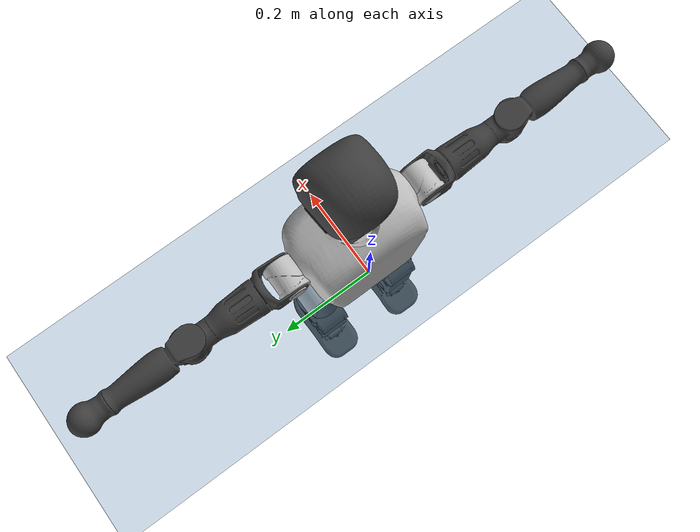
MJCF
<mujoco model="T1">
  <compiler angle="radian" assetdir="assets" balanceinertia="true" inertiafromgeom="false"/>

  <option timestep="0.005" density="1.2" viscosity="2e-05"/>

  <size nkey="1"/>

  <visual>
    <quality shadowsize="8192"/>
    <map shadowclip="0.5"/>
  </visual>

  <default>
    <default class="/">
      <joint armature="0.01" damping="0.01" frictionloss="0.1"/>
      <geom contype="0" conaffinity="0" group="1" solref="-1000 -80"/>
      <site size="0.01 0.005 0.005" group="5"/>
      <general forcelimited="true" biastype="affine" gainprm="25" biasprm="0 -25 -0.6"/>
      <default class="t1">
        <geom rgba="0.25 0.25 0.25 1"/>
        <default class="visual">
          <geom type="mesh" group="2"/>
        </default>
        <default class="collision">
          <geom group="3"/>
        </default>
        <default class="foot">
          <geom size="0.1115 0.05 0.015" type="box" condim="6" group="4" priority="1" solimp="0.015 1 0.015"/>
        </default>
        <default class="reward_collision_sphere">
          <geom group="5" rgba="1 0 0 1"/>
        </default>
      </default>
    </default>
  </default>

  <asset>
    <texture type="skybox" colorspace="auto" name="//unnamed_texture_0" builtin="gradient" rgb1="0.95 0.95 0.95" rgb2="0.95 0.95 0.95" width="100" height="600"/>
    <texture type="2d" colorspace="auto" name="texplane" builtin="checker" rgb1="0.345 0.575 0.748" rgb2="0.345 0.575 0.748" markrgb="1 1 1" width="512" height="512"/>
    <material name="MatPlane" class="/" texture="texplane" texuniform="true" texrepeat="2 2" specular="0.9"/>
    <mesh name="Trunk" class="/" file="Trunk.stl"/>
    <mesh name="H1" class="/" file="H1.stl"/>
    <mesh name="H2" class="/" file="H2.stl"/>
    <mesh name="AL1" class="/" file="AL1.stl"/>
    <mesh name="AL2" class="/" file="AL2.stl"/>
    <mesh name="AL3" class="/" file="AL3.stl"/>
    <mesh name="left_hand_link" class="/" file="left_hand_link.stl"/>
    <mesh name="AR1" class="/" file="AR1.stl"/>
    <mesh name="AR2" class="/" file="AR2.stl"/>
    <mesh name="AR3" class="/" file="AR3.stl"/>
    <mesh name="right_hand_link" class="/" file="right_hand_link.stl"/>
    <mesh name="Waist" class="/" file="Waist.stl"/>
    <mesh name="Hip_Pitch_Left" class="/" file="Hip_Pitch_Left.stl"/>
    <mesh name="Hip_Roll_Left" class="/" file="Hip_Roll_Left.stl"/>
    <mesh name="Hip_Yaw_Left" class="/" file="Hip_Yaw_Left.stl"/>
    <mesh name="Shank_Left" class="/" file="Shank_Left.stl"/>
    <mesh name="Ankle_Cross_Left" class="/" file="Ankle_Cross_Left.stl"/>
    <mesh name="left_foot_link" class="/" file="left_foot_link.stl"/>
    <mesh name="Hip_Pitch_Right" class="/" file="Hip_Pitch_Right.stl"/>
    <mesh name="Hip_Roll_Right" class="/" file="Hip_Roll_Right.stl"/>
    <mesh name="Hip_Yaw_Right" class="/" file="Hip_Yaw_Right.stl"/>
    <mesh name="Shank_Right" class="/" file="Shank_Right.stl"/>
    <mesh name="Ankle_Cross_Right" class="/" file="Ankle_Cross_Right.stl"/>
    <mesh name="right_foot_link" class="/" file="right_foot_link.stl"/>
  </asset>

  <worldbody>
    <geom name="floor" class="/" size="100 100 0.125" type="plane" group="0" material="MatPlane"/>
    <light name="toplight_shadow" class="/" pos="0 0 5" dir="0.0990148 0.0990148 -0.990148" type="directional" ambient="0.04 0.04 0.04" diffuse="0.55 0.55 0.55" specular="0.12 0.12 0.12"/>
    <light name="toplight_fill" class="/" pos="0 0 5" dir="0.0990148 0.0990148 -0.990148" type="directional" castshadow="false" ambient="0.04 0.04 0.04" diffuse="0.3 0.3 0.3" specular="0.08 0.08 0.08"/>
    <body name="trunk" childclass="t1" pos="-4.2152e-05 -0.000526283 -0.000387922" quat="1 0.000329016 -0.000124969 0.000248993">
      <inertial pos="0.0466432 -0.00106641 0.103565" quat="0.999958 0.000215313 -0.00910512 -0.000969914" mass="9.50404" diaginertia="0.038806 0.059099 0.0537698"/>
      <joint name="//unnamed_joint_0" type="free" armature="0" damping="0" frictionloss="0"/>
      <geom name="//unnamed_geom_1" class="visual" rgba="0.76 0.76 0.76 1" mesh="Trunk"/>
      <geom name="//unnamed_geom_2" class="collision" size="0.0695624 0.0927498 0.139125" pos="0.0505039 0 0.119139" type="box"/>
      <geom name="//unnamed_geom_3" class="reward_collision_sphere" size="0.106662" pos="0.0505039 0 0.0992822"/>
      <geom name="//unnamed_geom_4" class="reward_collision_sphere" size="0.0139125" pos="0.0505039 0.0805749 0"/>
      <geom name="//unnamed_geom_5" class="reward_collision_sphere" size="0.0139125" pos="0.0505039 -0.0805749 0"/>
      <geom name="//unnamed_geom_6" class="reward_collision_sphere" size="0.0139125" pos="0.0505039 0.10143 0.178708"/>
      <geom name="//unnamed_geom_7" class="reward_collision_sphere" size="0.0139125" pos="0.0505039 -0.10143 0.178708"/>
      <site name="imu" pos="-0.00715048 0.00787255 -0.00671016" size="0.00927498"/>
      <camera name="track" pos="0 -1.89588 0" quat="0.707107 0.707107 0 0" mode="trackcom"/>
      <camera name="ego_camera" pos="0.102691 0 0.416985" quat="-0.5 -0.5 0.5 0.5"/>
      <body name="H1" pos="0.0519611 -0.000264325 0.241741" quat="1 -6.08638e-05 2.39831e-05 -0.000672838">
        <inertial pos="-0.00103214 -0.00127461 0.0562774" quat="0.763245 -0.0137173 -0.00041788 0.645963" mass="0.36568" diaginertia="0.000102864 0.000171588 0.000145757"/>
        <joint name="AAHead_yaw" pos="0 0 0" axis="0.00175213 0.00320148 0.999993" stiffness="0.00204085" range="-1.56277 1.57772" armature="0.00999084" damping="0.00282919" frictionloss="0.0925031"/>
        <geom name="//unnamed_geom_8" class="visual" mesh="H1"/>
        <body name="H2" pos="0.00130447 0.000399133 0.0613814" quat="1 -0.000109227 5.2618e-05 -0.000484369">
          <inertial pos="0.00625423 0.00129645 0.097915" quat="0.988494 0.104923 -0.0743887 -0.07961" mass="0.506302" diaginertia="0.000859002 0.0014801 0.00164992"/>
          <joint name="Head_pitch" pos="0 0 0" axis="-0.000233604 -1 -0.000316516" range="-1.22849 0.363922" armature="0.00871284" damping="0.00858401" frictionloss="0.0902663"/>
          <geom name="//unnamed_geom_9" class="visual" mesh="H2"/>
          <geom name="//unnamed_geom_10" class="collision" size="0.0741998" pos="0.00841732 0 0.10921"/>
          <geom name="//unnamed_geom_11" class="reward_collision_sphere" size="0.0834748" pos="0.0168346 0 0.0992822"/>
        </body>
      </body>
      <body name="AL1" pos="0.0485409 0.100693 0.216767" quat="1 0.000128307 0.000431834 -1.27384e-05">
        <inertial pos="-0.00100447 0.0428209 5.7748e-05" quat="0.502346 0.496794 -0.504876 0.495927" mass="0.423915" diaginertia="0.000573151 0.00100113 0.000285718"/>
        <joint name="Left_Shoulder_Pitch" pos="0 0 0" axis="0.00134744 0.999991 0.00410503" range="-3.32865 1.21187" armature="0.00956121" damping="0.00730597" frictionloss="0.0953975"/>
        <geom name="//unnamed_geom_12" class="visual" rgba="0.76 0.76 0.76 1" mesh="AL1"/>
        <body name="AL2" pos="0.00164543 0.0442018 0.000101482" quat="1 2.92202e-05 4.40614e-06 1.71205e-05">
          <inertial pos="0.00370138 0.0359695 0.000590293" quat="0.488047 0.511431 -0.487825 0.512128" mass="0.128461" diaginertia="0.000168214 0.00025967 0.000167666"/>
          <joint name="Left_Shoulder_Roll" pos="0 0 0" axis="-0.999995 -0.00245148 -0.00221557" range="-1.54582 1.76704" armature="0.00867591" damping="0.00742573" frictionloss="0.0929323"/>
          <geom name="//unnamed_geom_13" class="visual" mesh="AL2"/>
          <body name="AL3" pos="0.000839936 0.0571674 -0.000363303" quat="1 0.000155142 0.000138217 -8.30665e-05">
            <inertial pos="-0.000696472 0.0809641 -0.000246836" quat="0.705468 0.708726 0.00399774 0.00232652" mass="0.815717" diaginertia="0.0054987 0.0098211 0.000591423"/>
            <joint name="Left_Elbow_Pitch" pos="0 0 0" axis="-0.00774854 -0.999961 -0.00413407" range="-2.24376 2.27495" armature="0.00839611" damping="0.00199034" frictionloss="0.093503"/>
            <geom name="//unnamed_geom_14" class="visual" mesh="AL3"/>
            <geom name="//unnamed_geom_15" class="collision" size="0.0278249 0.0695624" pos="0 0.047397 0" quat="0.707105 0.707108 0 0" type="cylinder"/>
            <geom name="//unnamed_geom_16" class="reward_collision_sphere" size="0.0333899"/>
            <body name="left_hand_link" pos="0.000712517 0.139809 0.000487292" quat="1 -0.000238818 0.000461679 -4.15175e-05">
              <inertial pos="-8.75045e-05 0.104353 -0.00048971" quat="0.707694 0.706519 3.21837e-05 -0.000464986" mass="0.258499" diaginertia="0.00346272 0.00627927 0.000203879"/>
              <joint name="Left_Elbow_Yaw" pos="0 0 0" axis="-0.00256675 0.00600031 0.999979" stiffness="0.00148171" range="-2.42455 0.0025247" armature="0.00994541" damping="0.0136001" frictionloss="0.0962548"/>
              <geom name="//unnamed_geom_17" class="visual" mesh="left_hand_link"/>
              <geom name="//unnamed_geom_18" class="collision" size="0.0278249 0.0811561" pos="0 0.123232 0" quat="0.707105 0.707108 0 0" type="cylinder"/>
              <geom name="//unnamed_geom_19" class="reward_collision_sphere" size="0.0463749"/>
              <geom name="//unnamed_geom_20" class="reward_collision_sphere" size="0.0324624" pos="0 0.104273 0"/>
              <geom name="//unnamed_geom_21" class="reward_collision_sphere" size="0.0324624" pos="0 0.203807 0"/>
            </body>
          </body>
        </body>
      </body>
      <body name="AR1" pos="0.0473433 -0.100637 0.216931" quat="1 0.000159353 0.000790483 0.000128977">
        <inertial pos="-0.00233147 -0.0435779 -0.000235821" quat="0.500375 0.4998 -0.499121 0.500701" mass="0.416764" diaginertia="0.000582829 0.000998681 0.000286663"/>
        <joint name="Right_Shoulder_Pitch" pos="0 0 0" axis="0.00132752 -0.999996 0.00239722" stiffness="0.00167646" range="-1.22726 3.30878" armature="0.00916299" damping="0.00507327" frictionloss="0.0936613"/>
        <geom name="//unnamed_geom_22" class="visual" rgba="0.76 0.76 0.76 1" mesh="AR1"/>
        <body name="AR2" pos="-0.000342396 -0.0430839 1.93724e-05" quat="1 0.000133958 -0.000384263 9.8305e-05">
          <inertial pos="0.00230081 -0.0354238 -0.000423154" quat="0.511908 0.487685 -0.511644 0.488195" mass="0.12729" diaginertia="0.000170005 0.000267586 0.000168661"/>
          <joint name="Right_Shoulder_Roll" pos="0 0 0" axis="-0.999991 0.00206207 -0.00358129" stiffness="0.00260513" range="-1.75706 1.60345" armature="0.0092373" damping="0.00541246" frictionloss="0.0949008"/>
          <geom name="//unnamed_geom_23" class="visual" mesh="AR2"/>
          <body name="AR3" pos="-0.000856342 -0.0578138 -2.93429e-05" quat="1 -1.24784e-05 -2.19852e-05 3.40408e-05">
            <inertial pos="-0.000497918 -0.082327 0.000576518" quat="0.708019 0.706193 -4.47284e-05 0.000107292" mass="0.814676" diaginertia="0.00538602 0.00982688 0.000602116"/>
            <joint name="Right_Elbow_Pitch" pos="0 0 0" axis="-0.00440034 0.99999 0.000708513" range="-2.28471 2.26897" armature="0.00937971" damping="0.00985065" frictionloss="0.0932107"/>
            <geom name="//unnamed_geom_24" class="visual" mesh="AR3"/>
            <geom name="//unnamed_geom_25" class="collision" size="0.0278249 0.0695624" pos="0 -0.047397 0" quat="0.707105 0.707108 0 0" type="cylinder"/>
            <geom name="//unnamed_geom_26" class="reward_collision_sphere" size="0.0333899"/>
            <body name="right_hand_link" pos="-0.000854728 -0.139341 -0.000546042" quat="1 -0.000110956 -0.000318512 -0.000190434">
              <inertial pos="-0.000165681 -0.104054 0.000881958" quat="0.70541 0.708798 -0.00108931 0.0010792" mass="0.264382" diaginertia="0.00344977 0.00623416 0.000208416"/>
              <joint name="Right_Elbow_Yaw" pos="0 0 0" axis="0.00126124 0.00359774 0.999993" range="0.00929015 2.43192" armature="0.00942939" damping="0.0115519" frictionloss="0.0910519"/>
              <geom name="//unnamed_geom_27" class="visual" mesh="right_hand_link"/>
              <geom name="//unnamed_geom_28" class="collision" size="0.0278249 0.0811561" pos="0 -0.123232 0" quat="0.707105 0.707108 0 0" type="cylinder"/>
              <geom name="//unnamed_geom_29" class="reward_collision_sphere" size="0.0463749"/>
              <geom name="//unnamed_geom_30" class="reward_collision_sphere" size="0.0324624" pos="0 -0.104273 0"/>
              <geom name="//unnamed_geom_31" class="reward_collision_sphere" size="0.0324624" pos="0 -0.203807 0"/>
            </body>
          </body>
        </body>
      </body>
      <body name="Waist" pos="0.0536111 -0.00201152 -0.114731" quat="1 -5.69928e-05 7.53586e-05 0.000249766">
        <inertial pos="-0.000230847 -0.000936084 0.00721872" quat="0.983601 0.00199781 -0.180345 0.00107352" mass="2.09215" diaginertia="0.0022402 0.00410711 0.00456264"/>
        <joint name="Waist" pos="0 0 0" axis="-0.000417462 -0.00750977 0.999972" range="-1.58576 1.58325" armature="0.00972099" damping="0.0204378" frictionloss="0.0934972"/>
        <geom name="//unnamed_geom_32" class="visual" mesh="Waist"/>
        <body name="Hip_Pitch_Left" pos="-0.000775436 0.100541 -0.000365893" quat="0.999999 0.000599804 0.0010561 0.000296972">
          <inertial pos="0.000858102 -0.00579125 -0.0180778" quat="0.975227 0.220771 0.0138592 0.000940564" mass="0.788542" diaginertia="0.000748973 0.00109738 0.00120676"/>
          <joint name="Left_Hip_Pitch" pos="0 0 0" axis="0.00016815 0.999984 0.00563732" stiffness="0.000360309" range="-1.79105 1.56645" armature="0.00918844" damping="0.00739254" frictionloss="0.100298"/>
          <geom name="//unnamed_geom_33" class="visual" rgba="0.76 0.76 0.76 1" mesh="Hip_Pitch_Left"/>
          <body name="Hip_Roll_Left" pos="0.00204177 0.00105522 -0.0221119" quat="1 7.49584e-05 0.000719478 -0.000332946">
            <inertial pos="0.000798162 0.0010986 -0.0546977" quat="0.707685 -0.0072703 -0.00774507 0.706448" mass="0.307628" diaginertia="0.000729978 0.00115957 0.000495605"/>
            <joint name="Left_Hip_Roll" pos="0 0 0" axis="-1 -1.62331e-05 -0.000223597" stiffness="0.000801566" range="-1.56864 0.195676" armature="0.00917507" damping="0.0126937" frictionloss="0.09301"/>
            <geom name="//unnamed_geom_34" class="visual" mesh="Hip_Roll_Left"/>
            <geom name="//unnamed_geom_35" class="reward_collision_sphere" size="0.0510124"/>
            <body name="Hip_Yaw_Left" pos="0.00205902 -0.00138917 -0.0824892" quat="1 5.47426e-05 -5.29397e-05 2.2342e-05">
              <inertial pos="-0.00608843 0.00143281 -0.087417" quat="0.697206 -0.0361123 -0.0320017 0.715245" mass="1.70613" diaginertia="0.010744 0.0191354 0.00248604"/>
              <joint name="Left_Hip_Yaw" pos="0 0 0" axis="-0.00173809 -0.00365734 -0.999992" range="-1.00883 1.01224" armature="0.00927481" damping="0.0141273" frictionloss="0.0907317"/>
              <geom name="//unnamed_geom_36" class="visual" mesh="Hip_Yaw_Left"/>
              <geom name="//unnamed_geom_37" class="collision" size="0.0463749 0.0741998" type="cylinder"/>
              <body name="Shank_Left" pos="-0.00960783 0.000337575 -0.132733" quat="1 2.39029e-05 4.24984e-05 -2.00327e-05">
                <inertial pos="-0.00502133 0.00130088 -0.124474" quat="0.997897 -0.000818978 -0.0212876 0.0612269" mass="1.37613" diaginertia="0.0146624 0.0261556 0.00179228"/>
                <joint name="Left_Knee_Pitch" pos="0 0 0" axis="-0.000445884 0.999999 -0.0016221" range="0.00498644 2.32528" armature="0.00931221" damping="0.0116465" frictionloss="0.0927397"/>
                <geom name="//unnamed_geom_38" class="visual" mesh="Shank_Left"/>
                <geom name="//unnamed_geom_39" class="collision" size="0.0463749 0.0695624" pos="0 0 -0.119139" type="cylinder"/>
                <geom name="//unnamed_geom_40" class="reward_collision_sphere" size="0.0602874"/>
                <body name="Ankle_Cross_Left" pos="-0.0010555 -0.000249776 -0.278472" quat="1 -0.000436195 -3.86776e-05 -6.54839e-05">
                  <inertial pos="-0.00346981 0.000110366 -0.00861231" quat="0.443457 0.550943 0.550747 0.443266" mass="0.0585526" diaginertia="1.22546e-05 1.96017e-05 1.08947e-05"/>
                  <joint name="Left_Ankle_Pitch" pos="0 0 0" axis="0.00172102 0.999998 0.000446865" range="-0.902293 0.378503" armature="0.00894893" damping="0" frictionloss="0.0896189"/>
                  <geom name="//unnamed_geom_41" class="visual" mesh="Ankle_Cross_Left"/>
                  <body name="left_foot_link" pos="-2.40214e-05 0.000855522 -0.0132075" quat="1 0.000451546 -0.000471187 0.000544138">
                    <inertial pos="0.000366115 -0.000146377 -0.00863687" quat="0.000207769 0.620263 0.00117518 0.784393" mass="0.561942" diaginertia="0.00118397 0.00186658 0.00221575"/>
                    <joint name="Left_Ankle_Roll" pos="0 0 0" axis="-0.999999 0.00114412 9.35975e-05" range="-0.445822 0.473756" armature="0.00933809" damping="0.00925096" frictionloss="0.10235"/>
                    <geom name="//unnamed_geom_42" class="visual" mesh="left_foot_link"/>
                    <geom name="left_foot" class="foot" size="0.104655 0.0446564 0.0152215" pos="0.00841732 0 -0.0148923"/>
                    <geom name="//unnamed_geom_44" class="reward_collision_sphere" size="0.0482299" pos="0.00841732 0 -0.0148923"/>
                    <geom name="//unnamed_geom_45" class="reward_collision_sphere" size="0.0278249" pos="0.0799645 -0.0218026 -0.0148923"/>
                    <geom name="//unnamed_geom_46" class="reward_collision_sphere" size="0.0278249" pos="-0.0589212 -0.0218026 -0.0148923"/>
                    <site name="left_foot" class="foot" pos="0.00841732 0 -0.0148923" size="0.00927498"/>
                  </body>
                </body>
              </body>
            </body>
          </body>
        </body>
        <body name="Hip_Pitch_Right" pos="-0.000154882 -0.100693 0.000167376" quat="1 -1.08237e-05 5.18934e-06 4.81359e-06">
          <inertial pos="0.00135758 0.00731791 -0.0168189" quat="0.972157 -0.233568 0.0156007 -0.0106531" mass="0.805597" diaginertia="0.00074607 0.00108204 0.00118951"/>
          <joint name="Right_Hip_Pitch" pos="0 0 0" axis="-0.000160141 -1 7.30381e-05" stiffness="0.000975633" range="-1.57046 1.81487" armature="0.00898341" damping="0.00684287" frictionloss="0.0927845"/>
          <geom name="//unnamed_geom_47" class="visual" rgba="0.76 0.76 0.76 1" mesh="Hip_Pitch_Right"/>
          <body name="Hip_Roll_Right" pos="-0.000103899 -0.000262561 -0.0210147" quat="1 -8.02786e-05 5.67397e-05 1.8437e-05">
            <inertial pos="0.000890831 -0.00103397 -0.0532307" quat="0.707033 -0.00575988 -0.0059024 0.707133" mass="0.305556" diaginertia="0.000733744 0.0011597 0.000490414"/>
            <joint name="Right_Hip_Roll" pos="0 0 0" axis="-0.999997 -3.82992e-05 -0.00238238" range="-0.208167 1.56304" armature="0.0096669" damping="0.00602833" frictionloss="0.0933911"/>
            <geom name="//unnamed_geom_48" class="visual" mesh="Hip_Roll_Right"/>
            <geom name="//unnamed_geom_49" class="reward_collision_sphere" size="0.0510124"/>
            <body name="Hip_Yaw_Right" pos="-0.000489405 0.00173749 -0.0817431" quat="1 2.97809e-05 6.19701e-06 4.99599e-05">
              <inertial pos="-0.00565311 5.60048e-05 -0.090473" quat="0.715004 -0.0298523 -0.0346245 0.697624" mass="1.75024" diaginertia="0.0108781 0.0195648 0.00252505"/>
              <joint name="Right_Hip_Yaw" pos="0 0 0" axis="-0.0010358 -0.00304393 -0.999995" range="-0.987479 1.01799" armature="0.00942465" damping="0.0131663" frictionloss="0.0930618"/>
              <geom name="//unnamed_geom_50" class="visual" mesh="Hip_Yaw_Right"/>
              <geom name="//unnamed_geom_51" class="collision" size="0.0463749 0.0741998" type="cylinder"/>
              <body name="Shank_Right" pos="-0.012247 -0.000282307 -0.133441" quat="1 -4.19189e-05 -0.000160251 6.59513e-05">
                <inertial pos="-0.00320798 -0.000572151 -0.12077" quat="0.999232 -0.00345142 -0.0234206 -0.0312121" mass="1.42173" diaginertia="0.0147717 0.0268424 0.00188685"/>
                <joint name="Right_Knee_Pitch" pos="0 0 0" axis="-0.00635221 -0.999966 -0.00535171" range="-2.33549 0.00523722" armature="0.00902508" damping="0.00346076" frictionloss="0.0939324"/>
                <geom name="//unnamed_geom_52" class="visual" mesh="Shank_Right"/>
                <geom name="//unnamed_geom_53" class="collision" size="0.0463749 0.0695624" pos="0 0 -0.119139" type="cylinder"/>
                <geom name="//unnamed_geom_54" class="reward_collision_sphere" size="0.0602874"/>
                <body name="Ankle_Cross_Right" pos="0.00154543 -0.0024502 -0.278629" quat="1 0.00053941 -0.000486816 0.000303912">
                  <inertial pos="-0.00311077 0.000309482 -0.00843492" quat="0.442507 0.550208 0.551359 0.444367" mass="0.0581681" diaginertia="1.21145e-05 1.96316e-05 1.10767e-05"/>
                  <joint name="Right_Ankle_Pitch" pos="0 0 0" axis="0.00367096 -0.999991 0.00204936" range="-0.33112 0.90195" armature="0.00917866" damping="0.00904484" frictionloss="0.0930866"/>
                  <geom name="//unnamed_geom_55" class="visual" mesh="Ankle_Cross_Right"/>
                  <body name="right_foot_link" pos="2.06032e-05 -0.000901389 -0.0114718" quat="1 -0.000139324 -7.99184e-05 -9.83816e-05">
                    <inertial pos="-0.000208232 -0.000461121 -0.00896749" quat="-0.00100688 0.622646 0.00187228 0.782501" mass="0.546858" diaginertia="0.00111876 0.00183278 0.0021314"/>
                    <joint name="Right_Ankle_Roll" pos="0 0 0" axis="-0.999998 -0.00207673 -0.000817242" range="-0.454425 0.458292" armature="0.00896496" damping="0.0092208" frictionloss="0.092393"/>
                    <geom name="//unnamed_geom_56" class="visual" mesh="right_foot_link"/>
                    <geom name="right_foot" class="foot" size="0.100227 0.0444869 0.0138995" pos="0.00841732 0 -0.0148923"/>
                    <geom name="//unnamed_geom_58" class="reward_collision_sphere" size="0.0370999"/>
                    <geom name="//unnamed_geom_59" class="reward_collision_sphere" size="0.0278249" pos="0.00841732 0 -0.0148923"/>
                    <geom name="//unnamed_geom_60" class="reward_collision_sphere" size="0.0278249" pos="0.0799645 0.0218026 -0.0148923"/>
                    <geom name="//unnamed_geom_61" class="reward_collision_sphere" size="0.0278249" pos="-0.0589212 0.0218026 -0.0148923"/>
                    <site name="right_foot" class="foot" pos="0.00841732 0 -0.0148923" size="0.00927498"/>
                  </body>
                </body>
              </body>
            </body>
          </body>
        </body>
      </body>
    </body>
  </worldbody>

  <contact>
    <pair class="/" geom1="floor" geom2="left_foot" name="//unnamed_contact_0"/>
    <pair class="/" geom1="floor" geom2="right_foot" name="//unnamed_contact_1"/>
  </contact>

  <actuator>
    <general name="AAHead_yaw" class="/" joint="AAHead_yaw" forcerange="-6.64681 6.64681" gainprm="22.2262" biasprm="0 -22.2262 -0.560452"/>
    <general name="Head_pitch" class="/" joint="Head_pitch" forcerange="-6.44129 6.44129" gainprm="22.2262" biasprm="0 -22.2262 -0.560452"/>
    <general name="Left_Shoulder_Pitch" class="/" joint="Left_Shoulder_Pitch" forcerange="-16.9188 16.9188" gainprm="22.2262" biasprm="0 -22.2262 -0.560452"/>
    <general name="Left_Shoulder_Roll" class="/" joint="Left_Shoulder_Roll" forcerange="-17.1368 17.1368" gainprm="22.2262" biasprm="0 -22.2262 -0.560452"/>
    <general name="Left_Elbow_Pitch" class="/" joint="Left_Elbow_Pitch" forcerange="-15.7268 15.7268" gainprm="22.2262" biasprm="0 -22.2262 -0.560452"/>
    <general name="Left_Elbow_Yaw" class="/" joint="Left_Elbow_Yaw" forcerange="-17.4692 17.4692" gainprm="22.2262" biasprm="0 -22.2262 -0.560452"/>
    <general name="Right_Shoulder_Pitch" class="/" joint="Right_Shoulder_Pitch" forcerange="-17.6076 17.6076" gainprm="22.2262" biasprm="0 -22.2262 -0.560452"/>
    <general name="Right_Shoulder_Roll" class="/" joint="Right_Shoulder_Roll" forcerange="-17.3125 17.3125" gainprm="22.2262" biasprm="0 -22.2262 -0.560452"/>
    <general name="Right_Elbow_Pitch" class="/" joint="Right_Elbow_Pitch" forcerange="-16.7789 16.7789" gainprm="22.2262" biasprm="0 -22.2262 -0.560452"/>
    <general name="Right_Elbow_Yaw" class="/" joint="Right_Elbow_Yaw" forcerange="-16.7713 16.7713" gainprm="22.2262" biasprm="0 -22.2262 -0.560452"/>
    <general name="Waist" class="/" joint="Waist" forcerange="-28.0709 28.0709" gainprm="22.2262" biasprm="0 -22.2262 -0.560452"/>
    <general name="Left_Hip_Pitch" class="/" joint="Left_Hip_Pitch" forcerange="-43.1397 43.1397" gainprm="22.2262" biasprm="0 -22.2262 -0.560452"/>
    <general name="Left_Hip_Roll" class="/" joint="Left_Hip_Roll" forcerange="-29.1032 29.1032" gainprm="22.2262" biasprm="0 -22.2262 -0.560452"/>
    <general name="Left_Hip_Yaw" class="/" joint="Left_Hip_Yaw" forcerange="-26.1405 26.1405" gainprm="22.2262" biasprm="0 -22.2262 -0.560452"/>
    <general name="Left_Knee_Pitch" class="/" joint="Left_Knee_Pitch" forcerange="-51.8307 51.8307" gainprm="22.2262" biasprm="0 -22.2262 -0.560452"/>
    <general name="Left_Ankle_Pitch" class="/" joint="Left_Ankle_Pitch" forcerange="-18.4894 18.4894" gainprm="22.2262" biasprm="0 -22.2262 -0.560452"/>
    <general name="Left_Ankle_Roll" class="/" joint="Left_Ankle_Roll" forcerange="-13.9011 13.9011" gainprm="22.2262" biasprm="0 -22.2262 -0.560452"/>
    <general name="Right_Hip_Pitch" class="/" joint="Right_Hip_Pitch" forcerange="-40.7208 40.7208" gainprm="22.2262" biasprm="0 -22.2262 -0.560452"/>
    <general name="Right_Hip_Roll" class="/" joint="Right_Hip_Roll" forcerange="-27.7563 27.7563" gainprm="22.2262" biasprm="0 -22.2262 -0.560452"/>
    <general name="Right_Hip_Yaw" class="/" joint="Right_Hip_Yaw" forcerange="-26.9407 26.9407" gainprm="22.2262" biasprm="0 -22.2262 -0.560452"/>
    <general name="Right_Knee_Pitch" class="/" joint="Right_Knee_Pitch" forcerange="-55.7691 55.7691" gainprm="22.2262" biasprm="0 -22.2262 -0.560452"/>
    <general name="Right_Ankle_Pitch" class="/" joint="Right_Ankle_Pitch" forcerange="-18.0345 18.0345" gainprm="22.2262" biasprm="0 -22.2262 -0.560452"/>
    <general name="Right_Ankle_Roll" class="/" joint="Right_Ankle_Roll" forcerange="-13.9519 13.9519" gainprm="22.2262" biasprm="0 -22.2262 -0.560452"/>
  </actuator>

  <sensor>
    <gyro site="imu" name="imu_angular_velocity"/>
    <velocimeter site="imu" name="imu_linear_velocity"/>
    <framelinvel objtype="site" objname="left_foot" name="left_foot_global_linear_velocity"/>
    <framelinvel objtype="site" objname="right_foot" name="right_foot_global_linear_velocity"/>
  </sensor>

  <keyframe>
    <key name="home" qpos="0 0 0.6385 1 0 0 0 0 0 0 1.4 0 -0.4 0 -1.4 0 0.4 0 -0.4 0 0 0.8 -0.4 0 0.4 0 0 -0.8 0.4 0"/>
  </keyframe>
</mujoco>
